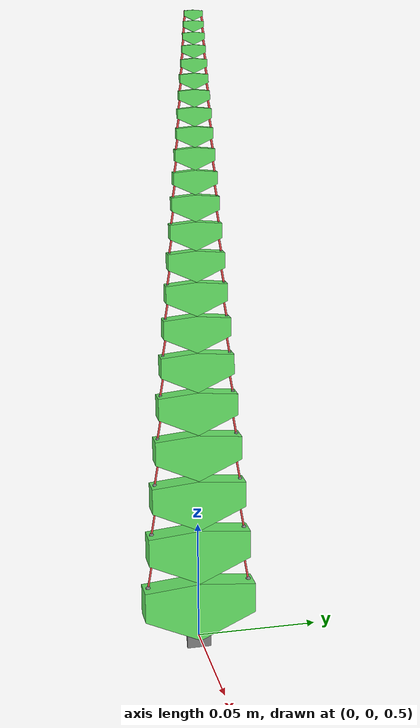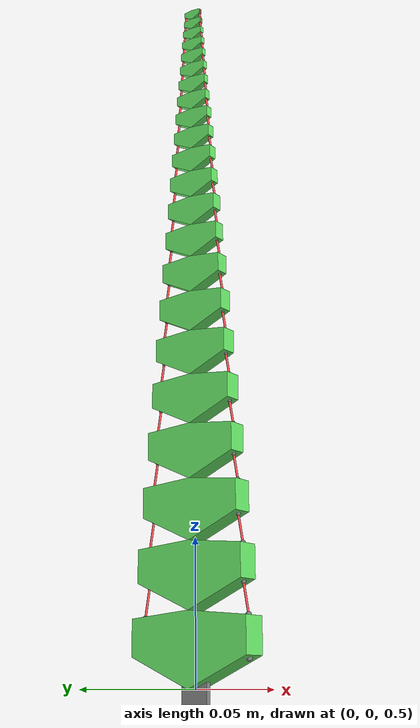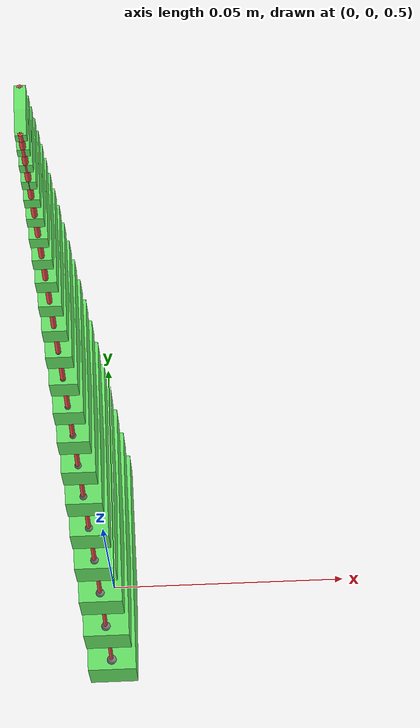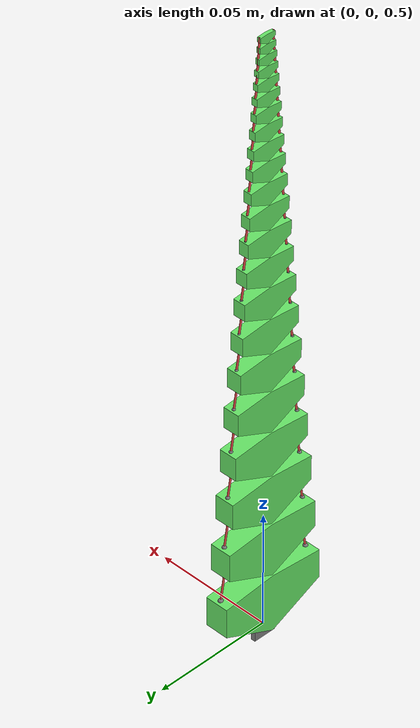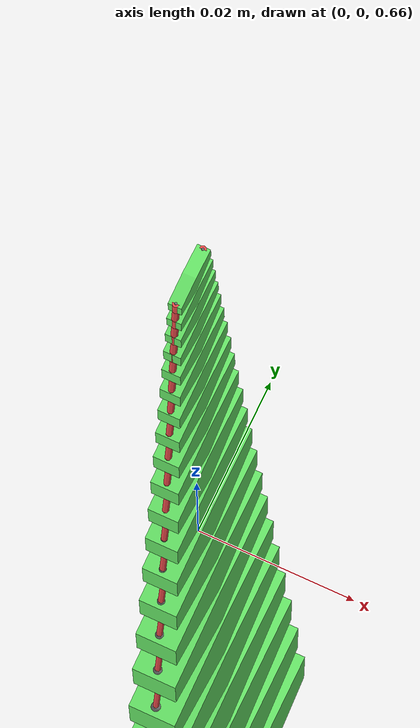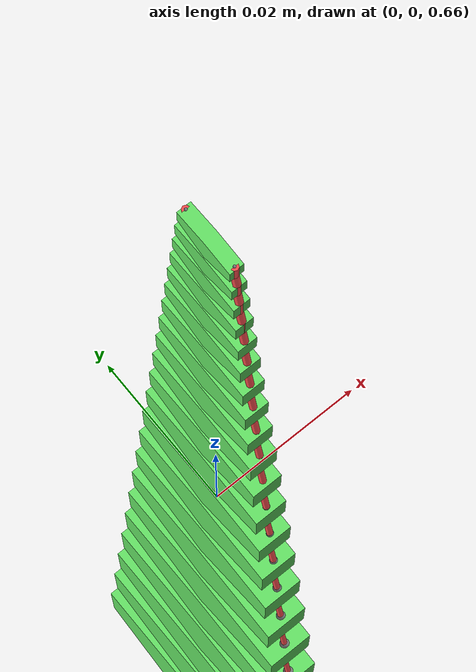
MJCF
<mujoco model="2Dspiral">
<compiler angle="radian" />
<option gravity="0 0 0"/>
<default>
	<default class="freej">
		<joint type="free" damping="0" armature="0" limited="false"/>
	</default>
</default>
<asset>
	<mesh name="1" file="2d10deg\P22.stl" scale="1  1  1"/>
	<mesh name="2" file="2d10deg\P22.stl" scale="0.91249     0.91249     0.91249"/>
	<mesh name="3" file="2d10deg\P22.stl" scale="0.83264     0.83264     0.83264"/>
	<mesh name="4" file="2d10deg\P22.stl" scale="0.75978     0.75978     0.75978"/>
	<mesh name="5" file="2d10deg\P22.stl" scale="0.69329     0.69329     0.69329"/>
	<mesh name="6" file="2d10deg\P22.stl" scale="0.63262     0.63262     0.63262"/>
	<mesh name="7" file="2d10deg\P22.stl" scale="0.57726     0.57726     0.57726"/>
	<mesh name="8" file="2d10deg\P22.stl" scale="0.52675     0.52675     0.52675"/>
	<mesh name="9" file="2d10deg\P22.stl" scale="0.48065     0.48065     0.48065"/>
	<mesh name="10" file="2d10deg\P22.stl" scale="0.43859     0.43859     0.43859"/>
	<mesh name="11" file="2d10deg\P22.stl" scale="0.40021     0.40021     0.40021"/>
	<mesh name="12" file="2d10deg\P22.stl" scale="0.36519     0.36519     0.36519"/>
	<mesh name="13" file="2d10deg\P22.stl" scale="0.33323     0.33323     0.33323"/>
	<mesh name="14" file="2d10deg\P22.stl" scale="0.30407     0.30407     0.30407"/>
	<mesh name="15" file="2d10deg\P22.stl" scale="0.27746     0.27746     0.27746"/>
	<mesh name="16" file="2d10deg\P22.stl" scale="0.25318     0.25318     0.25318"/>
	<mesh name="17" file="2d10deg\P22.stl" scale="0.23103     0.23103     0.23103"/>
	<mesh name="18" file="2d10deg\P22.stl" scale="0.21081     0.21081     0.21081"/>
	<mesh name="19" file="2d10deg\P22.stl" scale="0.19236     0.19236     0.19236"/>
	<mesh name="20" file="2d10deg\P22.stl" scale="0.17553     0.17553     0.17553"/>
	<mesh name="21" file="2d10deg\P22.stl" scale="0.16017     0.16017     0.16017"/>
	<mesh name="22" file="2d10deg\P22.stl" scale="0.14615     0.14615     0.14615"/>
	<texture name="texplane" type="2d" builtin="checker" rgb1=".2 .3 .4" rgb2=".1 0.15 0.2" width="512" height="512" mark="cross" markrgb=".8 .8 .8"/>
	<texture type="skybox" builtin="gradient" rgb1="0.3 0.5 0.7" rgb2="0 0 0" width="512" height="3072" />
	<material name="matplane" reflectance="0.3" texture="texplane" texrepeat="1 1" texuniform="true"/>
</asset>
<worldbody>
<geom name="ground" type="plane" size="10 10 1" pos="0 0 0" quat="1 0 0 0" material="matplane" condim="1"/>
<light pos="1 0.5 0.7" dir="-1 -0.5 -1" directional="true" castshadow="false" diffuse="0.4 0.4 0.4" specular="0.1 0.1 0.1" />
<body name="mocapt" mocap="true" pos="0 0 0.5">
	<geom type="box" group="1" size="0.001 0.005 0.005" contype="0" conaffinity="0" rgba=".5 .5 .5 1"/>
</body>
<body name="B0" pos="0           0         0.5">
	<joint class="freej"/>
	<geom type="mesh" mesh="1" name="1" pos="0 0 0" euler="0 0 0" rgba="0.4 0.9 0.4 1"/>
	<inertial pos="0.01275 0 0" quat="1 0 0 0" mass="0.01" diaginertia="0.00014562  0.00014562  0.00018288" />
	<site name="s0_1" pos="0    -0.02107     0.00969" size="0.001       0.001       0.001"/>
	<site name="s0_2" pos="0     0.02107     0.00969" size="0.001       0.001       0.001"/>
	<site name="s0_3" pos="0    -0.02107     0.02354" size="0.001       0.001       0.001"/>
	<site name="s0_4" pos="0     0.02107     0.02354" size="0.001       0.001       0.001"/>

	<body name="B1" pos=" 0 0 0.0255">
		<joint name="J1" pos="0 0 0" axis="1 0 0" limited="true" range="-0.523       0.523" stiffness="0.041632" damping="0.0083264"  />
		<geom type="mesh" mesh="2" name="2" pos="0 0 0" euler="0 0 0" rgba="0.4 0.9 0.4 1"/>
		<inertial pos="0.011634 0 0" quat="1 0 0 0" mass="0.0075978" diaginertia="0.00012125  0.00012125  0.00015227" />
		<site name="s1_1" pos="0   -0.019226    0.008842" size="0.00091249  0.00091249  0.00091249"/>
		<site name="s1_2" pos="0    0.019226    0.008842" size="0.00091249  0.00091249  0.00091249"/>
		<site name="s1_3" pos="0   -0.019226     0.02148" size="0.00091249  0.00091249  0.00091249"/>
		<site name="s1_4" pos="0    0.019226     0.02148" size="0.00091249  0.00091249  0.00091249"/>
		<body name="B2" pos=" 0 0 0.023268">
			<joint name="J2" pos="0 0 0" axis="1 0 0" limited="true" range="-0.523       0.523" stiffness="0.034665" damping="0.0069329"  />
			<geom type="mesh" mesh="3" name="3" pos="0 0 0" euler="0 0 0" rgba="0.4 0.9 0.4 1"/>
			<inertial pos="0.010616 0 0" quat="1 0 0 0" mass="0.0057726" diaginertia="0.00010096  0.00010096  0.00012679" />
			<site name="s2_1" pos="0   -0.017544   0.0080683" size="0.00083264  0.00083264  0.00083264"/>
			<site name="s2_2" pos="0    0.017544   0.0080683" size="0.00083264  0.00083264  0.00083264"/>
			<site name="s2_3" pos="0   -0.017544      0.0196" size="0.00083264  0.00083264  0.00083264"/>
			<site name="s2_4" pos="0    0.017544      0.0196" size="0.00083264  0.00083264  0.00083264"/>
			<body name="B3" pos=" 0 0 0.021232">
				<joint name="J3" pos="0 0 0" axis="1 0 0" limited="true" range="-0.523       0.523" stiffness="0.028863" damping="0.0057726"  />
				<geom type="mesh" mesh="4" name="4" pos="0 0 0" euler="0 0 0" rgba="0.4 0.9 0.4 1"/>
				<inertial pos="0.009687 0 0" quat="1 0 0 0" mass="0.0043859" diaginertia="8.4063e-05  8.4063e-05  0.00010557" />
				<site name="s3_1" pos="0   -0.016009   0.0073623" size="0.00075978  0.00075978  0.00075978"/>
				<site name="s3_2" pos="0    0.016009   0.0073623" size="0.00075978  0.00075978  0.00075978"/>
				<site name="s3_3" pos="0   -0.016009    0.017885" size="0.00075978  0.00075978  0.00075978"/>
				<site name="s3_4" pos="0    0.016009    0.017885" size="0.00075978  0.00075978  0.00075978"/>
				<body name="B4" pos=" 0 0 0.019374">
					<joint name="J4" pos="0 0 0" axis="1 0 0" limited="true" range="-0.523       0.523" stiffness="0.024033" damping="0.0048065"  />
					<geom type="mesh" mesh="5" name="5" pos="0 0 0" euler="0 0 0" rgba="0.4 0.9 0.4 1"/>
					<inertial pos="0.0088393 0 0" quat="1 0 0 0" mass="0.0033323" diaginertia="6.9994e-05  6.9994e-05    8.79e-05" />
					<site name="s4_1" pos="0   -0.014608    0.006718" size="0.00069329  0.00069329  0.00069329"/>
					<site name="s4_2" pos="0    0.014608    0.006718" size="0.00069329  0.00069329  0.00069329"/>
					<site name="s4_3" pos="0   -0.014608     0.01632" size="0.00069329  0.00069329  0.00069329"/>
					<site name="s4_4" pos="0    0.014608     0.01632" size="0.00069329  0.00069329  0.00069329"/>
					<body name="B5" pos=" 0 0 0.017679">
						<joint name="J5" pos="0 0 0" axis="1 0 0" limited="true" range="-0.523       0.523" stiffness="0.020011" damping="0.0040021"  />
						<geom type="mesh" mesh="6" name="6" pos="0 0 0" euler="0 0 0" rgba="0.4 0.9 0.4 1"/>
						<inertial pos="0.0080658 0 0" quat="1 0 0 0" mass="0.0025318" diaginertia="5.828e-05   5.828e-05  7.3189e-05" />
						<site name="s5_1" pos="0   -0.013329   0.0061301" size="0.00063262  0.00063262  0.00063262"/>
						<site name="s5_2" pos="0    0.013329   0.0061301" size="0.00063262  0.00063262  0.00063262"/>
						<site name="s5_3" pos="0   -0.013329    0.014892" size="0.00063262  0.00063262  0.00063262"/>
						<site name="s5_4" pos="0    0.013329    0.014892" size="0.00063262  0.00063262  0.00063262"/>
						<body name="B6" pos=" 0 0 0.016132">
							<joint name="J6" pos="0 0 0" axis="1 0 0" limited="true" range="-0.523       0.523" stiffness="0.016662" damping="0.0033323"  />
							<geom type="mesh" mesh="7" name="7" pos="0 0 0" euler="0 0 0" rgba="0.4 0.9 0.4 1"/>
							<inertial pos="0.00736 0 0" quat="1 0 0 0" mass="0.0019236" diaginertia="4.8527e-05  4.8527e-05   6.094e-05" />
							<site name="s6_1" pos="0   -0.012163   0.0055937" size="0.00057726  0.00057726  0.00057726"/>
							<site name="s6_2" pos="0    0.012163   0.0055937" size="0.00057726  0.00057726  0.00057726"/>
							<site name="s6_3" pos="0   -0.012163    0.013589" size="0.00057726  0.00057726  0.00057726"/>
							<site name="s6_4" pos="0    0.012163    0.013589" size="0.00057726  0.00057726  0.00057726"/>
							<body name="B7" pos=" 0 0 0.01472">
								<joint name="J7" pos="0 0 0" axis="1 0 0" limited="true" range="-0.523       0.523" stiffness="0.013873" damping="0.0027746"  />
								<geom type="mesh" mesh="8" name="8" pos="0 0 0" euler="0 0 0" rgba="0.4 0.9 0.4 1"/>
								<inertial pos="0.0067159 0 0" quat="1 0 0 0" mass="0.0014615" diaginertia="4.0405e-05  4.0405e-05  5.0742e-05" />
								<site name="s7_1" pos="0   -0.011099   0.0051042" size="0.00052675  0.00052675  0.00052675"/>
								<site name="s7_2" pos="0    0.011099   0.0051042" size="0.00052675  0.00052675  0.00052675"/>
								<site name="s7_3" pos="0   -0.011099      0.0124" size="0.00052675  0.00052675  0.00052675"/>
								<site name="s7_4" pos="0    0.011099      0.0124" size="0.00052675  0.00052675  0.00052675"/>
								<body name="B8" pos=" 0 0 0.013432">
									<joint name="J8" pos="0 0 0" axis="1 0 0" limited="true" range="-0.523       0.523" stiffness="0.011551" damping="0.0023103"  />
									<geom type="mesh" mesh="9" name="9" pos="0 0 0" euler="0 0 0" rgba="0.4 0.9 0.4 1"/>
									<inertial pos="0.0061282 0 0" quat="1 0 0 0" mass="0.0011104" diaginertia="3.3643e-05  3.3643e-05   4.225e-05" />
									<site name="s8_1" pos="0   -0.010127   0.0046575" size="0.00048065  0.00048065  0.00048065"/>
									<site name="s8_2" pos="0    0.010127   0.0046575" size="0.00048065  0.00048065  0.00048065"/>
									<site name="s8_3" pos="0   -0.010127    0.011315" size="0.00048065  0.00048065  0.00048065"/>
									<site name="s8_4" pos="0    0.010127    0.011315" size="0.00048065  0.00048065  0.00048065"/>
									<body name="B9" pos=" 0 0 0.012256">
										<joint name="J9" pos="0 0 0" axis="1 0 0" limited="true" range="-0.523       0.523" stiffness="0.0096182" damping="0.0019236"  />
										<geom type="mesh" mesh="10" name="10" pos="0 0 0" euler="0 0 0" rgba="0.4 0.9 0.4 1"/>
										<inertial pos="0.005592 0 0" quat="1 0 0 0" mass="0.00084369" diaginertia="2.8013e-05  2.8013e-05  3.5179e-05" />
										<site name="s9_1" pos="0  -0.0092412     0.00425" size="0.00043859  0.00043859  0.00043859"/>
										<site name="s9_2" pos="0   0.0092412     0.00425" size="0.00043859  0.00043859  0.00043859"/>
										<site name="s9_3" pos="0  -0.0092412    0.010324" size="0.00043859  0.00043859  0.00043859"/>
										<site name="s9_4" pos="0   0.0092412    0.010324" size="0.00043859  0.00043859  0.00043859"/>
										<body name="B10" pos=" 0 0 0.011184">
											<joint name="J10" pos="0 0 0" axis="1 0 0" limited="true" range="-0.523       0.523" stiffness="0.0080085" damping="0.0016017"  />
											<geom type="mesh" mesh="11" name="11" pos="0 0 0" euler="0 0 0" rgba="0.4 0.9 0.4 1"/>
											<inertial pos="0.0051026 0 0" quat="1 0 0 0" mass="0.00064102" diaginertia="2.3325e-05  2.3325e-05  2.9291e-05" />
											<site name="s10_1" pos="0  -0.0084325   0.0038781" size="0.00040021  0.00040021  0.00040021"/>
											<site name="s10_2" pos="0   0.0084325   0.0038781" size="0.00040021  0.00040021  0.00040021"/>
											<site name="s10_3" pos="0  -0.0084325    0.009421" size="0.00040021  0.00040021  0.00040021"/>
											<site name="s10_4" pos="0   0.0084325    0.009421" size="0.00040021  0.00040021  0.00040021"/>
											<body name="B11" pos=" 0 0 0.010205">
												<joint name="J11" pos="0 0 0" axis="1 0 0" limited="true" range="-0.523       0.523" stiffness="0.0066682" damping="0.0013336"  />
												<geom type="mesh" mesh="12" name="12" pos="0 0 0" euler="0 0 0" rgba="0.4 0.9 0.4 1"/>
												<inertial pos="0.0046561 0 0" quat="1 0 0 0" mass="0.00048703" diaginertia="1.9421e-05  1.9421e-05  2.4389e-05" />
												<site name="s11_1" pos="0  -0.0076946   0.0035387" size="0.00036519  0.00036519  0.00036519"/>
												<site name="s11_2" pos="0   0.0076946   0.0035387" size="0.00036519  0.00036519  0.00036519"/>
												<site name="s11_3" pos="0  -0.0076946   0.0085966" size="0.00036519  0.00036519  0.00036519"/>
												<site name="s11_4" pos="0   0.0076946   0.0085966" size="0.00036519  0.00036519  0.00036519"/>
												<body name="B12" pos=" 0 0 0.0093122">
													<joint name="J12" pos="0 0 0" axis="1 0 0" limited="true" range="-0.523       0.523" stiffness="0.0055522" damping="0.0011104"  />
													<geom type="mesh" mesh="13" name="13" pos="0 0 0" euler="0 0 0" rgba="0.4 0.9 0.4 1"/>
													<inertial pos="0.0042486 0 0" quat="1 0 0 0" mass="0.00037004" diaginertia="1.6171e-05  1.6171e-05  2.0307e-05" />
													<site name="s12_1" pos="0  -0.0070212    0.003229" size="0.00033323  0.00033323  0.00033323"/>
													<site name="s12_2" pos="0   0.0070212    0.003229" size="0.00033323  0.00033323  0.00033323"/>
													<site name="s12_3" pos="0  -0.0070212   0.0078443" size="0.00033323  0.00033323  0.00033323"/>
													<site name="s12_4" pos="0   0.0070212   0.0078443" size="0.00033323  0.00033323  0.00033323"/>
													<body name="B13" pos=" 0 0 0.0084973">
														<joint name="J13" pos="0 0 0" axis="1 0 0" limited="true" range="-0.523       0.523" stiffness="0.004623" damping="0.0009246"  />
														<geom type="mesh" mesh="14" name="14" pos="0 0 0" euler="0 0 0" rgba="0.4 0.9 0.4 1"/>
														<inertial pos="0.0038769 0 0" quat="1 0 0 0" mass="0.00028115" diaginertia="1.3464e-05  1.3464e-05  1.6909e-05" />
														<site name="s13_1" pos="0  -0.0064068   0.0029465" size="0.00030407  0.00030407  0.00030407"/>
														<site name="s13_2" pos="0   0.0064068   0.0029465" size="0.00030407  0.00030407  0.00030407"/>
														<site name="s13_3" pos="0  -0.0064068   0.0071579" size="0.00030407  0.00030407  0.00030407"/>
														<site name="s13_4" pos="0   0.0064068   0.0071579" size="0.00030407  0.00030407  0.00030407"/>
														<body name="B14" pos=" 0 0 0.0077537">
															<joint name="J14" pos="0 0 0" axis="1 0 0" limited="true" range="-0.523       0.523" stiffness="0.0038493" damping="0.00076986"  />
															<geom type="mesh" mesh="15" name="15" pos="0 0 0" euler="0 0 0" rgba="0.4 0.9 0.4 1"/>
															<inertial pos="0.0035376 0 0" quat="1 0 0 0" mass="0.00021361" diaginertia="1.1211e-05  1.1211e-05  1.4079e-05" />
															<site name="s14_1" pos="0  -0.0058462   0.0026886" size="0.00027746  0.00027746  0.00027746"/>
															<site name="s14_2" pos="0   0.0058462   0.0026886" size="0.00027746  0.00027746  0.00027746"/>
															<site name="s14_3" pos="0  -0.0058462   0.0065315" size="0.00027746  0.00027746  0.00027746"/>
															<site name="s14_4" pos="0   0.0058462   0.0065315" size="0.00027746  0.00027746  0.00027746"/>
															<body name="B15" pos=" 0 0 0.0070752">
																<joint name="J15" pos="0 0 0" axis="1 0 0" limited="true" range="-0.523       0.523" stiffness="0.0032051" damping="0.00064102"  />
																<geom type="mesh" mesh="16" name="16" pos="0 0 0" euler="0 0 0" rgba="0.4 0.9 0.4 1"/>
																<inertial pos="0.003228 0 0" quat="1 0 0 0" mass="0.0001623" diaginertia="9.3348e-06  9.3348e-06  1.1723e-05" />
																<site name="s15_1" pos="0  -0.0053346   0.0024534" size="0.00025318  0.00025318  0.00025318"/>
																<site name="s15_2" pos="0   0.0053346   0.0024534" size="0.00025318  0.00025318  0.00025318"/>
																<site name="s15_3" pos="0  -0.0053346   0.0059599" size="0.00025318  0.00025318  0.00025318"/>
																<site name="s15_4" pos="0   0.0053346   0.0059599" size="0.00025318  0.00025318  0.00025318"/>
																<body name="B16" pos=" 0 0 0.0064561">
																	<joint name="J16" pos="0 0 0" axis="1 0 0" limited="true" range="-0.523       0.523" stiffness="0.0026687" damping="0.00053374"  />
																	<geom type="mesh" mesh="17" name="17" pos="0 0 0" euler="0 0 0" rgba="0.4 0.9 0.4 1"/>
																	<inertial pos="0.0029456 0 0" quat="1 0 0 0" mass="0.00012331" diaginertia="7.7725e-06  7.7725e-06  9.7608e-06" />
																	<site name="s16_1" pos="0  -0.0048678   0.0022387" size="0.00023103  0.00023103  0.00023103"/>
																	<site name="s16_2" pos="0   0.0048678   0.0022387" size="0.00023103  0.00023103  0.00023103"/>
																	<site name="s16_3" pos="0  -0.0048678   0.0054384" size="0.00023103  0.00023103  0.00023103"/>
																	<site name="s16_4" pos="0   0.0048678   0.0054384" size="0.00023103  0.00023103  0.00023103"/>
																	<body name="B17" pos=" 0 0 0.0058911">
																		<joint name="J17" pos="0 0 0" axis="1 0 0" limited="true" range="-0.523       0.523" stiffness="0.0022221" damping="0.00044441"  />
																		<geom type="mesh" mesh="18" name="18" pos="0 0 0" euler="0 0 0" rgba="0.4 0.9 0.4 1"/>
																		<inertial pos="0.0026878 0 0" quat="1 0 0 0" mass="9.3688e-05" diaginertia="6.4717e-06  6.4717e-06  8.1273e-06" />
																		<site name="s17_1" pos="0  -0.0044418   0.0020428" size="0.00021081  0.00021081  0.00021081"/>
																		<site name="s17_2" pos="0   0.0044418   0.0020428" size="0.00021081  0.00021081  0.00021081"/>
																		<site name="s17_3" pos="0  -0.0044418   0.0049625" size="0.00021081  0.00021081  0.00021081"/>
																		<site name="s17_4" pos="0   0.0044418   0.0049625" size="0.00021081  0.00021081  0.00021081"/>
																		<body name="B18" pos=" 0 0 0.0053756">
																			<joint name="J18" pos="0 0 0" axis="1 0 0" limited="true" range="-0.523       0.523" stiffness="0.0018502" damping="0.00037004"  />
																			<geom type="mesh" mesh="19" name="19" pos="0 0 0" euler="0 0 0" rgba="0.4 0.9 0.4 1"/>
																			<inertial pos="0.0024526 0 0" quat="1 0 0 0" mass="7.1182e-05" diaginertia="5.3886e-06  5.3886e-06  6.7671e-06" />
																			<site name="s18_1" pos="0  -0.0040531    0.001864" size="0.00019236  0.00019236  0.00019236"/>
																			<site name="s18_2" pos="0   0.0040531    0.001864" size="0.00019236  0.00019236  0.00019236"/>
																			<site name="s18_3" pos="0  -0.0040531   0.0045282" size="0.00019236  0.00019236  0.00019236"/>
																			<site name="s18_4" pos="0   0.0040531   0.0045282" size="0.00019236  0.00019236  0.00019236"/>
																			<body name="B19" pos=" 0 0 0.0049052">
																				<joint name="J19" pos="0 0 0" axis="1 0 0" limited="true" range="-0.523       0.523" stiffness="0.0015405" damping="0.00030811"  />
																				<geom type="mesh" mesh="20" name="20" pos="0 0 0" euler="0 0 0" rgba="0.4 0.9 0.4 1"/>
																				<inertial pos="0.002238 0 0" quat="1 0 0 0" mass="5.4083e-05" diaginertia="4.4868e-06  4.4868e-06  5.6346e-06" />
																				<site name="s19_1" pos="0  -0.0036984   0.0017009" size="0.00017553  0.00017553  0.00017553"/>
																				<site name="s19_2" pos="0   0.0036984   0.0017009" size="0.00017553  0.00017553  0.00017553"/>
																				<site name="s19_3" pos="0  -0.0036984    0.004132" size="0.00017553  0.00017553  0.00017553"/>
																				<site name="s19_4" pos="0   0.0036984    0.004132" size="0.00017553  0.00017553  0.00017553"/>
																				<body name="B20" pos=" 0 0 0.0044759">
																					<joint name="J20" pos="0 0 0" axis="1 0 0" limited="true" range="-0.523       0.523" stiffness="0.0012827" damping="0.00025654"  />
																					<geom type="mesh" mesh="21" name="21" pos="0 0 0" euler="0 0 0" rgba="0.4 0.9 0.4 1"/>
																					<inertial pos="0.0020421 0 0" quat="1 0 0 0" mass="4.1091e-05" diaginertia="3.7359e-06  3.7359e-06  4.6916e-06" />
																					<site name="s20_1" pos="0  -0.0033748    0.001552" size="0.00016017  0.00016017  0.00016017"/>
																					<site name="s20_2" pos="0   0.0033748    0.001552" size="0.00016017  0.00016017  0.00016017"/>
																					<site name="s20_3" pos="0  -0.0033748   0.0037704" size="0.00016017  0.00016017  0.00016017"/>
																					<site name="s20_4" pos="0   0.0033748   0.0037704" size="0.00016017  0.00016017  0.00016017"/>
																					<body name="B21" pos=" 0 0 0.0040843">
																						<joint name="J21" pos="0 0 0" axis="1 0 0" limited="true" range="-0.523       0.523" stiffness="0.001068" damping="0.00021361"  />
																						<geom type="mesh" mesh="22" name="22" pos="0 0 0" euler="0 0 0" rgba="0.4 0.9 0.4 1"/>
																						<inertial pos="0.0018634 0 0" quat="1 0 0 0" mass="3.122e-05" diaginertia="3.1107e-06  3.1107e-06  3.9064e-06" />
																						<site name="s21_1" pos="0  -0.0030795   0.0014162" size="0.00014615  0.00014615  0.00014615"/>
																						<site name="s21_2" pos="0   0.0030795   0.0014162" size="0.00014615  0.00014615  0.00014615"/>
																						<site name="s21_3" pos="0  -0.0030795   0.0034405" size="0.00014615  0.00014615  0.00014615"/>
																						<site name="s21_4" pos="0   0.0030795   0.0034405" size="0.00014615  0.00014615  0.00014615"/>
																					</body>
																				</body>
																			</body>
																		</body>
																	</body>
																</body>
															</body>
														</body>
													</body>
												</body>
											</body>
										</body>
									</body>
								</body>
							</body>
						</body>
					</body>
				</body>
			</body>
		</body>
	</body>
</body>
</worldbody>

<actuator>
	<muscle name="A_1" ctrllimited="true"  lengthrange="0.1         0.4" ctrlrange="0  1" force="10" tendon="t1"/>
	<muscle name="A_2" ctrllimited="true"  lengthrange="0.1         0.4" ctrlrange="0  1" force="10" tendon="t2"/>
</actuator>
<tendon>
	<spatial name="t1" width="0.0004" frictionloss="0.1" rgba=".95 .3 .3 1" limited="true" range="0.1         0.4">
		<site site="s0_1"/>
		<site site="s0_3"/>
		<site site="s1_1"/>
		<site site="s1_3"/>
		<site site="s2_1"/>
		<site site="s2_3"/>
		<site site="s3_1"/>
		<site site="s3_3"/>
		<site site="s4_1"/>
		<site site="s4_3"/>
		<site site="s5_1"/>
		<site site="s5_3"/>
		<site site="s6_1"/>
		<site site="s6_3"/>
		<site site="s7_1"/>
		<site site="s7_3"/>
		<site site="s8_1"/>
		<site site="s8_3"/>
		<site site="s9_1"/>
		<site site="s9_3"/>
		<site site="s10_1"/>
		<site site="s10_3"/>
		<site site="s11_1"/>
		<site site="s11_3"/>
		<site site="s12_1"/>
		<site site="s12_3"/>
		<site site="s13_1"/>
		<site site="s13_3"/>
		<site site="s14_1"/>
		<site site="s14_3"/>
		<site site="s15_1"/>
		<site site="s15_3"/>
		<site site="s16_1"/>
		<site site="s16_3"/>
		<site site="s17_1"/>
		<site site="s17_3"/>
		<site site="s18_1"/>
		<site site="s18_3"/>
		<site site="s19_1"/>
		<site site="s19_3"/>
		<site site="s20_1"/>
		<site site="s20_3"/>
		<site site="s21_1"/>
		<site site="s21_3"/>
	</spatial>
	<spatial name="t2" width="0.0004" frictionloss="0.1" rgba=".95 .3 .3 1" limited="true" range="0.1         0.4">
		<site site="s0_2"/>
		<site site="s0_4"/>
		<site site="s1_2"/>
		<site site="s1_4"/>
		<site site="s2_2"/>
		<site site="s2_4"/>
		<site site="s3_2"/>
		<site site="s3_4"/>
		<site site="s4_2"/>
		<site site="s4_4"/>
		<site site="s5_2"/>
		<site site="s5_4"/>
		<site site="s6_2"/>
		<site site="s6_4"/>
		<site site="s7_2"/>
		<site site="s7_4"/>
		<site site="s8_2"/>
		<site site="s8_4"/>
		<site site="s9_2"/>
		<site site="s9_4"/>
		<site site="s10_2"/>
		<site site="s10_4"/>
		<site site="s11_2"/>
		<site site="s11_4"/>
		<site site="s12_2"/>
		<site site="s12_4"/>
		<site site="s13_2"/>
		<site site="s13_4"/>
		<site site="s14_2"/>
		<site site="s14_4"/>
		<site site="s15_2"/>
		<site site="s15_4"/>
		<site site="s16_2"/>
		<site site="s16_4"/>
		<site site="s17_2"/>
		<site site="s17_4"/>
		<site site="s18_2"/>
		<site site="s18_4"/>
		<site site="s19_2"/>
		<site site="s19_4"/>
		<site site="s20_2"/>
		<site site="s20_4"/>
		<site site="s21_2"/>
		<site site="s21_4"/>
	</spatial>
</tendon>
<equality>
	<weld body1="mocapt" body2="B0" solref="0.01 1" solimp=".9 .9 0.01"/>
</equality>
</mujoco>
